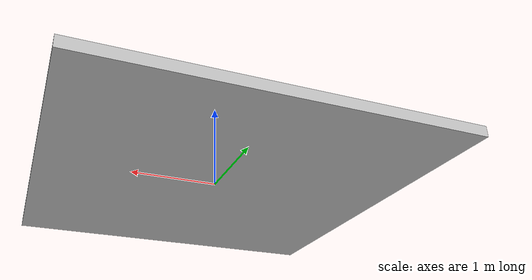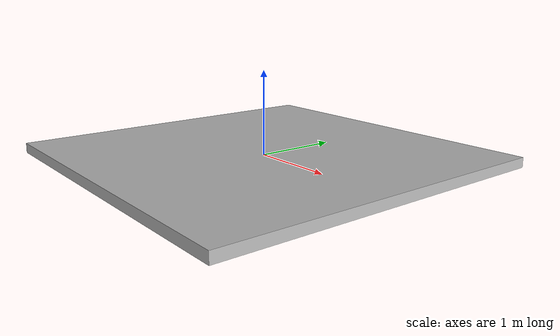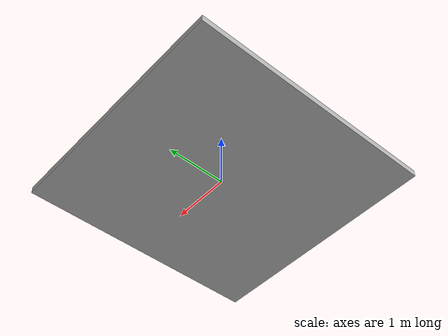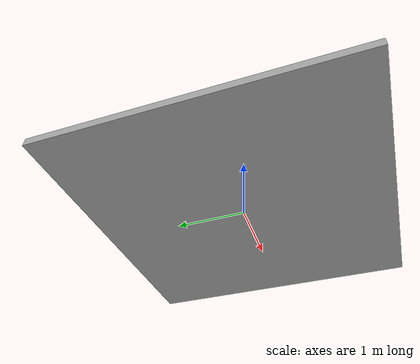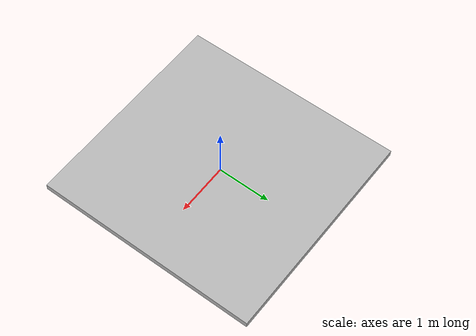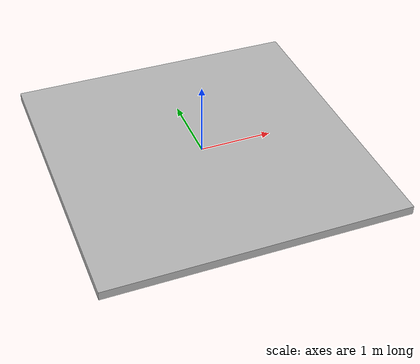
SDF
<?xml version='1.0'?>
<sdf version='1.5'>
  <model name='aruco_map_5_5'>
    <static>true</static>
    <link name="link">
      <collision name="collision">
        <geometry>
          <box>
            <size>4.10520312 4.20555616 .12</size>
          </box>
        </geometry>
      </collision>
      <visual name="visual">
        <cast_shadows>false</cast_shadows>
        <geometry>
          <box>
            <size>4.10520312 4.20555616 .12</size>
          </box>
        </geometry>
        <material>
          <script>
            <uri>model://aruco_map_5_5/materials/scripts</uri>
            <uri>model://aruco_map_5_5/materials/textures</uri>
            <name>aruco/Image</name>
          </script>
        </material>
      </visual>
    </link>
  </model>
</sdf>
